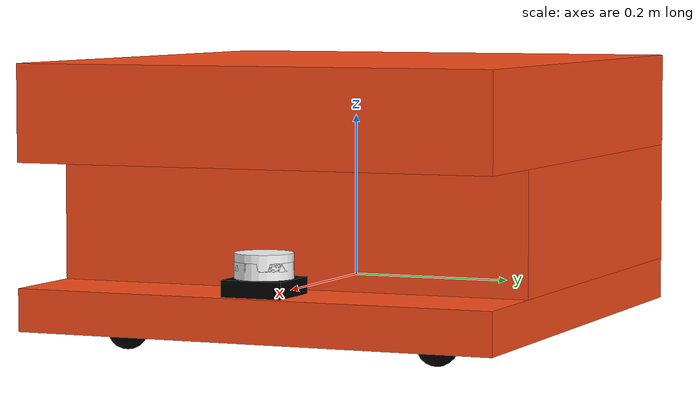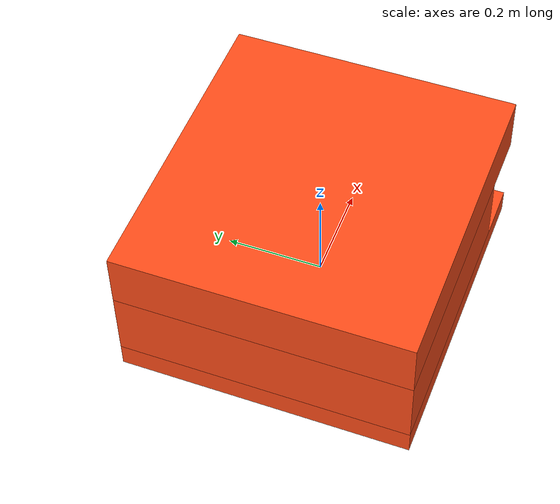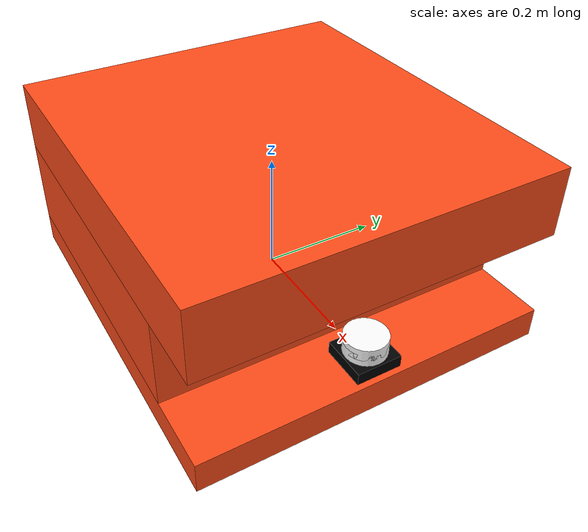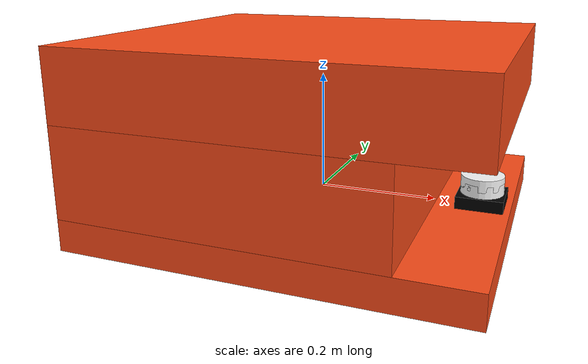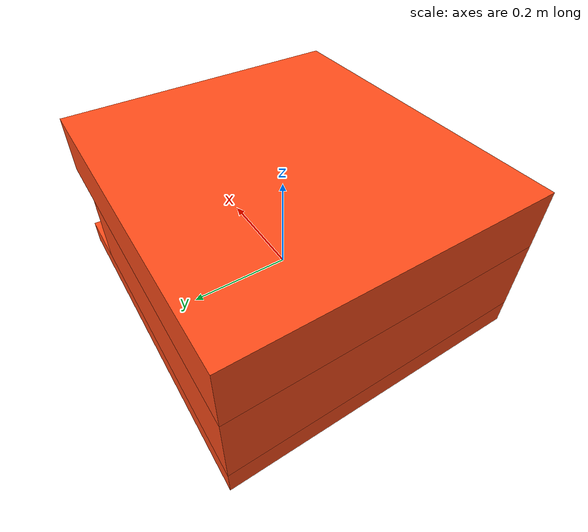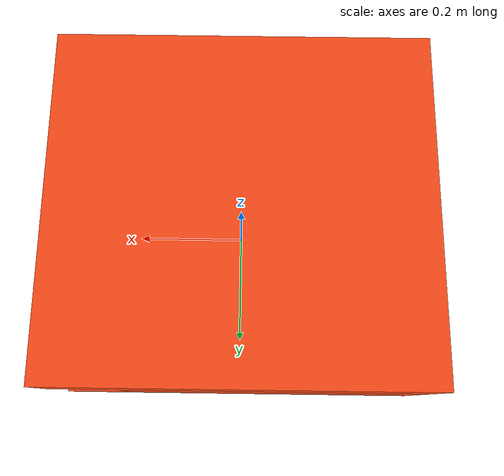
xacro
<?xml version="1.0"?>
<robot xmlns:xacro="http://www.ros.org/wiki/xacro"  name="agv">

    <xacro:arg name="use_ros2_control" default="true"/>
    <xacro:arg name="sim_mode" default="false"/>

    <xacro:include filename="robot_core.xacro" />

    <xacro:if value="$(arg use_ros2_control)">
        <xacro:include filename="ros2_control.xacro" />
    </xacro:if>
    <xacro:unless value="$(arg use_ros2_control)">
        <xacro:include filename="gazebo_control.xacro" />
    </xacro:unless>

    <xacro:include filename="lidar.xacro" />

</robot>

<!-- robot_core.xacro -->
<robot xmlns:xacro="http://www.ros.org/wiki/xacro">

    <!-- INCLUDE SUPPORTING XACRO -->
    <xacro:include filename="color.xacro"/>
    <xacro:include filename="inertial_macros.xacro"/>

    <!-- DEFINE ROBOT PROPERTIES -->
    <xacro:property name="chassis_length" value="0.650"/>
    <xacro:property name="chassis_width" value="0.600"/>
    <xacro:property name="chassis_height" value="0.320"/>
    <xacro:property name="chassis_base_height" value="0.052"/>
    <xacro:property name="chassis_base_mass" value="28.0"/>

    <xacro:property name="chassis_mid_length" value="0.530"/>
    <xacro:property name="chassis_mid_height" value="0.150"/>
    <xacro:property name="chassis_mid_mass" value="28.0"/>

    <xacro:property name="chassis_upper_height" value="0.118"/>
    <xacro:property name="chassis_upper_mass" value="28.0"/>

    <xacro:property name="wheel_radius" value="0.077"/>
    <xacro:property name="wheel_thickness" value="0.04"/>
    <xacro:property name="wheel_mass" value="0.5"/>
    <xacro:property name="wheel_offset_x" value="0.325"/>
    <xacro:property name="wheel_offset_y" value="0.21"/>
    <xacro:property name="wheel_offset_z" value="0.05"/>

    <xacro:property name="caster_wheel_radius" value="0.025"/>
    <xacro:property name="caster_wheel_mass" value="0.1"/>
    <xacro:property name="caster_wheel_b_offset_x" value="0.095"/>
    <xacro:property name="caster_wheel_f_offset_x" value="0.560"/>
    <xacro:property name="caster_wheel_offset_y" value="0.20"/>
    <xacro:property name="caster_wheel_offset_z" value="${wheel_offset_z - wheel_radius + caster_wheel_radius + 0.0005}"/>

    <!-- BASE LINK -->
    <link name="base_link"></link>

    <!-- BASE FOOTPRINT LINK -->
    <joint name="base_footprint_joint" type="fixed">
        <parent link="base_link"/>
        <child link="base_footprint"/>
        <origin xyz="0 0 0" rpy="0 0 0"/>
    </joint>

    <link name="base_footprint"></link>

    <!-- BASE CHASSIS LINK -->
    <joint name="chassis_joint" type="fixed">
        <parent link="base_link"/>
        <child link="chassis"/>
        <origin xyz="${-wheel_offset_x} 0 ${-wheel_offset_z}"/>
    </joint>

    <link name="chassis">
        <visual>
            <origin xyz="${chassis_length/2} 0 ${chassis_base_height/2}"/>
            <geometry>
                <box size="${chassis_length} ${chassis_width} ${chassis_base_height}"/>
            </geometry>
            <material name="orange"/>
        </visual>
        <collision>
            <origin xyz="${chassis_length/2} 0 ${chassis_base_height/2}"/>
            <geometry>
                <box size="${chassis_length} ${chassis_width} ${chassis_base_height}"/>
            </geometry>
        </collision>
        <xacro:inertial_box mass="${chassis_base_mass}" x="${chassis_length}" y="${chassis_width}" z="${chassis_base_height}">
            <origin xyz="${chassis_length/2} 0 ${chassis_base_height/2}" rpy="0 0 0"/>
        </xacro:inertial_box>
    </link>

    <gazebo reference="chassis">
        <material>Gazebo/Orange</material>
    </gazebo>

    <!-- MID CHASSIS LINK -->
    <joint name="mid_chassis_joint" type="fixed">
        <parent link="base_link"/>
        <child link="mid_chassis"/>
        <origin xyz="${-wheel_offset_x} 0 ${-wheel_offset_z}"/>
    </joint>

    <link name="mid_chassis">
        <visual>
            <origin xyz="${chassis_mid_length/2} 0 ${chassis_mid_height/2 + chassis_base_height}"/>
            <geometry>
                <box size="${chassis_mid_length} ${chassis_width} ${chassis_mid_height}"/>
            </geometry>
            <material name="orange"/>
        </visual>
        <collision>
            <origin xyz="${chassis_mid_length/2} 0 ${chassis_mid_height/2 + chassis_base_height}"/>
            <geometry>
                <box size="${chassis_mid_length} ${chassis_width} ${chassis_mid_height}"/>
            </geometry>
        </collision>
        <xacro:inertial_box mass="${chassis_mid_mass}" x="${chassis_mid_length}" y="${chassis_width}" z="${chassis_mid_height}">
            <origin xyz="${chassis_mid_length/2} 0 ${chassis_mid_height/2 + chassis_base_height}" rpy="0 0 0"/>
        </xacro:inertial_box>
    </link>

    <gazebo reference="mid_chassis">
        <material>Gazebo/Orange</material>
    </gazebo>

    <!-- UPPER CHASSIS LINK -->
    <joint name="upper_chassis_joint" type="fixed">
        <parent link="base_link"/>
        <child link="upper_chassis"/>
        <origin xyz="${-wheel_offset_x} 0 ${-wheel_offset_z}"/>
    </joint>

    <link name="upper_chassis">
        <visual>
            <origin xyz="${chassis_length/2} 0 ${chassis_upper_height/2 + chassis_base_height + chassis_mid_height}"/>
            <geometry>
                <box size="${chassis_length} ${chassis_width} ${chassis_upper_height}"/>
            </geometry>
            <material name="orange"/>
        </visual>
        <collision>
            <origin xyz="${chassis_length/2} 0 ${chassis_upper_height/2 + chassis_base_height + chassis_mid_height}"/>
            <geometry>
                <box size="${chassis_length} ${chassis_width} ${chassis_upper_height}"/>
            </geometry>
        </collision>
        <xacro:inertial_box mass="${chassis_upper_mass}" x="${chassis_length}" y="${chassis_width}" z="${chassis_upper_height}">
            <origin xyz="${chassis_length/2} 0 ${chassis_upper_height/2}" rpy="0 0 0"/>
        </xacro:inertial_box>
    </link>

    <gazebo reference="upper_chassis">
        <material>Gazebo/Orange</material>
    </gazebo>

    <!-- LEFT WHEEL LINK -->
    <joint name="left_wheel_joint" type="continuous">
        <parent link="base_link"/>
        <child link="left_wheel"/>
        <origin xyz="0 ${wheel_offset_y} 0" rpy="-${pi/2} 0 0" />
        <axis xyz="0 0 1"/>
    </joint>

    <link name="left_wheel">
        <visual>
            <geometry>
                <cylinder radius="${wheel_radius}" length="${wheel_thickness}"/>
            </geometry>
            <material name="blue"/>
        </visual>
        <collision>
            <geometry>
                <sphere radius="${wheel_radius}"/>
            </geometry>
        </collision>
        <xacro:inertial_cylinder mass="${wheel_mass}" length="${wheel_thickness}" radius="${wheel_radius}">
            <origin xyz="0 0 0" rpy="0 0 0"/>
        </xacro:inertial_cylinder>
    </link>

    <gazebo reference="left_wheel">
        <material>Gazebo/Blue</material>
    </gazebo>

    <!-- RIGHT WHEEL LINK -->
    <joint name="right_wheel_joint" type="continuous">
        <parent link="base_link"/>
        <child link="right_wheel"/>
        <origin xyz="0 ${-wheel_offset_y} 0" rpy="${pi/2} 0 0" />
        <axis xyz="0 0 -1"/>
    </joint>

    <link name="right_wheel">
        <visual>
            <geometry>
                <cylinder radius="${wheel_radius}" length="${wheel_thickness}"/>
            </geometry>
            <material name="blue"/>
        </visual>
        <collision>
            <geometry>
                <sphere radius="${wheel_radius}"/>
            </geometry>
        </collision>
        <xacro:inertial_cylinder mass="${wheel_mass}" length="${wheel_thickness}" radius="${wheel_radius}">
            <origin xyz="0 0 0" rpy="0 0 0"/>
        </xacro:inertial_cylinder>
    </link>

    <gazebo reference="right_wheel">
        <material>Gazebo/Blue</material>
    </gazebo>

    <!-- CASTER WHEEL LINK BR-->
    <joint name="caster_wheel_br_joint" type="fixed">
        <parent link="chassis"/>
        <child link="caster_wheel_br"/>
        <origin xyz="${caster_wheel_b_offset_x} ${-caster_wheel_offset_y} ${caster_wheel_offset_z}"/>
    </joint>

    <link name="caster_wheel_br">
        <visual>
            <geometry>
                <sphere radius="${caster_wheel_radius}"/>
            </geometry>
            <material name="black"/>
        </visual>
        <collision>
            <geometry>
                <sphere radius="${caster_wheel_radius}"/>
            </geometry>
        </collision>
        <xacro:inertial_sphere mass="${caster_wheel_mass}" radius="${caster_wheel_radius}">
            <origin xyz="0 0 0" rpy="0 0 0"/>
        </xacro:inertial_sphere>
    </link>

    <gazebo reference="caster_wheel_br">
        <material>Gazebo/Black</material>
        <mu1 value="0.005"/>
        <mu2 value="0.005"/>
    </gazebo>

    <!-- CASTER WHEEL LINK BL-->
    <joint name="caster_wheel_bl_joint" type="fixed">
        <parent link="chassis"/>
        <child link="caster_wheel_bl"/>
        <origin xyz="${caster_wheel_b_offset_x} ${caster_wheel_offset_y} ${caster_wheel_offset_z}"/>
    </joint>

    <link name="caster_wheel_bl">
        <visual>
            <geometry>
                <sphere radius="${caster_wheel_radius}"/>
            </geometry>
            <material name="black"/>
        </visual>
        <collision>
            <geometry>
                <sphere radius="${caster_wheel_radius}"/>
            </geometry>
        </collision>
        <xacro:inertial_sphere mass="${caster_wheel_mass}" radius="${caster_wheel_radius}">
            <origin xyz="0 0 0" rpy="0 0 0"/>
        </xacro:inertial_sphere>
    </link>

    <gazebo reference="caster_wheel_bl">
        <material>Gazebo/Black</material>
        <mu1 value="0.005"/>
        <mu2 value="0.005"/>
    </gazebo>

    <!-- CASTER WHEEL LINK FR-->
    <joint name="caster_wheel_fr_joint" type="fixed">
        <parent link="chassis"/>
        <child link="caster_wheel_fr"/>
        <origin xyz="${caster_wheel_f_offset_x} ${-caster_wheel_offset_y} ${caster_wheel_offset_z}"/>
    </joint>

    <link name="caster_wheel_fr">
        <visual>
            <geometry>
                <sphere radius="${caster_wheel_radius}"/>
            </geometry>
            <material name="black"/>
        </visual>
        <collision>
            <geometry>
                <sphere radius="${caster_wheel_radius}"/>
            </geometry>
        </collision>
        <xacro:inertial_sphere mass="${caster_wheel_mass}" radius="${caster_wheel_radius}">
            <origin xyz="0 0 0" rpy="0 0 0"/>
        </xacro:inertial_sphere>
    </link>

    <gazebo reference="caster_wheel_fr">
        <material>Gazebo/Black</material>
        <mu1 value="0.004"/>
        <mu2 value="0.004"/>
    </gazebo>

    <!-- CASTER WHEEL LINK FL-->
    <joint name="caster_wheel_fl_joint" type="fixed">
        <parent link="chassis"/>
        <child link="caster_wheel_fl"/>
        <origin xyz="${caster_wheel_f_offset_x} ${caster_wheel_offset_y} ${caster_wheel_offset_z}"/>
    </joint>

    <link name="caster_wheel_fl">
        <visual>
            <geometry>
                <sphere radius="${caster_wheel_radius}"/>
            </geometry>
            <material name="black"/>
        </visual>
        <collision>
            <geometry>
                <sphere radius="${caster_wheel_radius}"/>
            </geometry>
        </collision>
        <xacro:inertial_sphere mass="${caster_wheel_mass}" radius="${caster_wheel_radius}">
            <origin xyz="0 0 0" rpy="0 0 0"/>
        </xacro:inertial_sphere>
    </link>

    <gazebo reference="caster_wheel_fl">
        <material>Gazebo/Black</material>
        <mu1 value="0.004"/>
        <mu2 value="0.004"/>
    </gazebo>

</robot>

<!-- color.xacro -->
<robot xmlns:xacro="http://www.ros.org/wiki/xacro">

    <material name="white">
        <color rgba="1 1 1 1" />
    </material>

    <material name="orange">
        <color rgba="1 0.3 0.1 1"/>
    </material>

    <material name="blue">
        <color rgba="0.2 0.2 1 1"/>
    </material>

    <material name="black">
        <color rgba="0 0 0 1"/>
    </material>

    <material name="red">
        <color rgba="1 0 0 1"/>
    </material>

</robot>

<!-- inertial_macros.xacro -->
<robot xmlns:xacro="http://www.ros.org/wiki/xacro">

    <xacro:macro name="inertial_sphere" params="mass radius *origin">
        <inertial>
            <xacro:insert_block name="origin"/>
            <mass value="${mass}" />
            <inertia ixx="${(2/5) * mass * (radius*radius)}" ixy="0.0" ixz="0.0"
                    iyy="${(2/5) * mass * (radius*radius)}" iyz="0.0"
                    izz="${(2/5) * mass * (radius*radius)}" />
        </inertial>
    </xacro:macro>

    <xacro:macro name="inertial_box" params="mass x y z *origin">
        <inertial>
            <xacro:insert_block name="origin"/>
            <mass value="${mass}" />
            <inertia ixx="${(1/12) * mass * (y*y+z*z)}" ixy="0.0" ixz="0.0"
                    iyy="${(1/12) * mass * (x*x+z*z)}" iyz="0.0"
                    izz="${(1/12) * mass * (x*x+y*y)}" />
        </inertial>
    </xacro:macro>

    <xacro:macro name="inertial_cylinder" params="mass length radius *origin">
        <inertial>
            <xacro:insert_block name="origin"/>
            <mass value="${mass}" />
            <inertia ixx="${(1/12) * mass * (3*radius*radius + length*length)}" ixy="0.0" ixz="0.0"
                    iyy="${(1/12) * mass * (3*radius*radius + length*length)}" iyz="0.0"
                    izz="${(1/2) * mass * (radius*radius)}" />
        </inertial>
    </xacro:macro>

</robot>

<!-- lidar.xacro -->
<robot xmlns:xacro="http://www.ros.org/wiki/xacro">

    <!-- DEFINE ROBOT PROPERTIES -->
    <xacro:property name="lidar_chassis_length" value="0.076"/>
    <xacro:property name="lidar_chassis_width" value="0.076"/>
    <xacro:property name="lidar_chassis_height" value="0.02"/>
    <xacro:property name="lidar_chassis_mass" value="0.1"/>
    <xacro:property name="lidar_chassis_offset_x" value="0.640"/>
    <xacro:property name="lidar_chassis_offset_z" value="0.052"/>

    <xacro:property name="lidar_radius" value="0.035"/>
    <xacro:property name="lidar_thickness" value="0.02"/>
    <xacro:property name="lidar_mass" value="0.1"/>

    <!-- LIDAR CHASSIS LINK -->
    <joint name="lidar_chassis_joint" type="fixed">
        <parent link="chassis"/>
        <child link="lidar_chassis"/>
        <origin xyz="${lidar_chassis_offset_x - lidar_chassis_length/2} 0 ${lidar_chassis_offset_z}" rpy="0 0 ${pi}"/>
    </joint>

    <link name="lidar_chassis">
        <visual>
            <origin xyz="0 0 ${lidar_chassis_height/2}"/>
            <geometry>
                <box size="${lidar_chassis_length} ${lidar_chassis_width} ${lidar_chassis_height}"/>
            </geometry>
            <material name="black"/>
        </visual>
        <collision>
            <origin xyz="0 0 ${lidar_chassis_height/2}"/>
            <geometry>
                <box size="${lidar_chassis_length} ${lidar_chassis_width} ${lidar_chassis_height}"/>
            </geometry>
        </collision>
        <xacro:inertial_box mass="${lidar_chassis_mass}" x="${lidar_chassis_length}" y="${lidar_chassis_width}" z="${lidar_chassis_height}">
            <origin xyz="0 0 ${lidar_chassis_height/2}" rpy="0 0 0"/>
        </xacro:inertial_box>
    </link>

    <gazebo reference="lidar_chassis">
        <material>Gazebo/Black</material>
    </gazebo>

    <!-- LIDAR LINK -->
    <joint name="laser_joint" type="fixed">
        <parent link="lidar_chassis"/>
        <child link="laser_frame"/>
        <origin xyz="0 0 ${lidar_chassis_height + lidar_thickness/2}" rpy="0 0 0"/>
    </joint>

    <link name="laser_frame">
        <visual>
            <geometry>
                <cylinder radius="${lidar_radius}" length="${lidar_thickness}"/>
            </geometry>
            <material name="white"/>
        </visual>
        <visual>
            <origin xyz="0 0 ${lidar_thickness/2}"/>
            <geometry>
                <cylinder radius="${lidar_radius}" length="${lidar_thickness}"/>
            </geometry>
            <material name="white"/>
        </visual>
        <collision>
            <origin xyz="0 0 ${lidar_thickness/2}"/>
            <geometry>
                <cylinder radius="${lidar_radius}" length="${lidar_thickness}"/>
            </geometry>
        </collision>
        <xacro:inertial_cylinder mass="${lidar_mass}" length="${lidar_radius}" radius="${lidar_thickness}">
            <origin xyz="0 0 ${lidar_thickness/2}" rpy="0 0 0"/>
        </xacro:inertial_cylinder>
    </link>

    <gazebo reference="laser_frame">
        <material>Gazebo/White</material>

        <sensor name="laser" type="ray">
            <pose> 0 0 0 0 0 0 </pose>
            <visualize>true</visualize>
            <update_rate>10</update_rate>
            <ray>
                <scan>
                    <horizontal>
                        <samples>360</samples>
                        <min_angle>-3.14</min_angle>
                        <max_angle>3.14</max_angle>
                    </horizontal>
                </scan>
                <range>
                    <min>0.1</min>
                    <max>12</max>
                </range>
            </ray>
            <plugin name="laser_controller" filename="libgazebo_ros_ray_sensor.so">
                <ros>
                    <argument>~/out:=scan</argument>
                </ros>
                <output_type>sensor_msgs/LaserScan</output_type>
                <frame_name>laser_frame</frame_name>
            </plugin>
        </sensor>
    </gazebo>

</robot>
